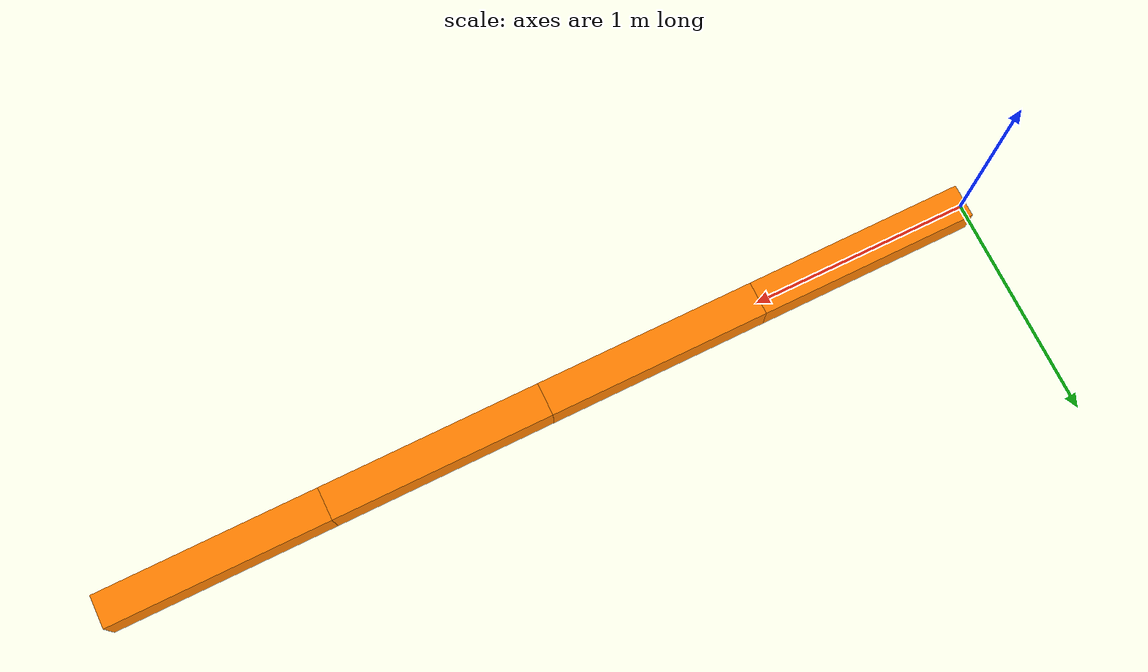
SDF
<?xml version="1.0" ?>
<sdf version='1.6'>
  <model name='4DOFManipulator'>
    <link name="link1">
      <pose frame=''>0 0 0 0 0 0</pose>
      <inertial>
        <pose frame='link1'>0.5 0 0 0 0 0</pose>
        <mass>1.0</mass>
        <inertia>
          <ixx>0.005</ixx>
          <ixy>0.</ixy>
          <ixz>0.0</ixz>
          <iyy>0.006</iyy>
          <izz>0.003</izz>
        </inertia>
      </inertial>
      <collision name='link1_collision'>
        <pose frame=''>0.5 0 0 0 0 0</pose>
        <geometry>
          <box>
            <size>1 0.15 0.15</size>
          </box>
        </geometry>
      </collision>
      <visual name='link1_visual'>
        <pose frame=''>0.5 0 0 0 0 0</pose>
        <geometry>
          <box>
            <size>1 0.15 0.15</size>
          </box>
        </geometry>
        <material>
          <ambient>1.0 0.5019607843137254902 0 1.0</ambient>
        </material>
      </visual>
      <self_collide>0</self_collide>
    </link>

    <link name="link2">
      <pose frame=''>1 0 0 0 0 0</pose>
      <inertial>
        <pose frame='link2'>0.5 0 0 0 0 0</pose>
        <mass>1.0</mass>
        <inertia>
          <ixx>0.005</ixx>
          <ixy>0.</ixy>
          <ixz>0.0</ixz>
          <iyy>0.006</iyy>
          <izz>0.003</izz>
        </inertia>
      </inertial>
      <collision name='link2_collision'>
        <pose frame=''>0.5 0 0 0 0 0</pose>
        <geometry>
          <box>
            <size>1 0.15 0.15</size>
          </box>
        </geometry>
      </collision>
      <visual name='link2_visual'>
        <pose frame=''>0.5 0 0 0 0 0</pose>
        <geometry>
          <box>
            <size>1 0.15 0.15</size>
          </box>
        </geometry>
        <material>
          <ambient>1.0 0.5019607843137254902 0 1.0</ambient>
        </material>
      </visual>
      <self_collide>0</self_collide>
    </link>

    <link name="link3">
      <pose frame=''>2 0 0 0 0 0</pose>
      <inertial>
        <pose frame='link3'>0.5 0 0 0 0 0</pose>
        <mass>1.0</mass>
        <inertia>
          <ixx>0.005</ixx>
          <ixy>0.</ixy>
          <ixz>0.0</ixz>
          <iyy>0.006</iyy>
          <izz>0.003</izz>
        </inertia>
      </inertial>
      <collision name='link3_collision'>
        <pose frame=''>0.5 0 0 0 0 0</pose>
        <geometry>
          <box>
            <size>1 0.15 0.15</size>
          </box>
        </geometry>
      </collision>
      <visual name='link3_visual'>
        <pose frame=''>0.5 0 0 0 0 0</pose>
        <geometry>
          <box>
            <size>1 0.15 0.15</size>
          </box>
        </geometry>
        <material>
          <ambient>1.0 0.5019607843137254902 0 1.0</ambient>
        </material>
      </visual>
      <self_collide>0</self_collide>
    </link>

    <link name="link4">
      <pose frame=''>3 0 0 0 0 0</pose>
      <inertial>
        <pose frame='link4'>0.5 0 0 0 0 0</pose>
        <mass>1.0</mass>
        <inertia>
          <ixx>0.005</ixx>
          <ixy>0.</ixy>
          <ixz>0.0</ixz>
          <iyy>0.006</iyy>
          <izz>0.003</izz>
        </inertia>
      </inertial>
      <collision name='link4_collision'>
        <pose frame=''>0.5 0 0 0 0 0</pose>
        <geometry>
          <box>
            <size>1 0.15 0.15</size>
          </box>
        </geometry>
      </collision>
      <visual name='link4_visual'>
        <pose frame=''>0.5 0 0 0 0 0</pose>
        <geometry>
          <box>
            <size>1 0.15 0.15</size>
          </box>
        </geometry>
        <material>
          <ambient>1.0 0.5019607843137254902 0 1.0</ambient>
        </material>
      </visual>
      <self_collide>0</self_collide>
    </link>

    <joint name="joint1" type="revolute">
      <parent>world</parent>
      <child>link1</child>
      <axis>
        <xyz>0 0 1</xyz>
        <limit>
          <lower>-0.64159265358979323846</lower>
          <upper>2.64159265358979323846</upper>
          <velocity>6</velocity>
          <effort>50</effort>
        </limit>
        <dynamics>
          <damping>1.0</damping>
          <friction>0.2</friction>
        </dynamics>
        <use_parent_model_frame>1</use_parent_model_frame>
      </axis>
      <physics>
        <ode>
          <implicit_spring_damper>1</implicit_spring_damper>
          <bounce>0</bounce>
          <limit>
            <erp>0.9</erp>
            <cfm>0</cfm>
          </limit>
        </ode>
      </physics>
    </joint>

    <joint name="joint2" type="revolute">
      <parent>link1</parent>
      <child>link2</child>
      <axis>
        <xyz>0 1 0</xyz>
        <limit>
          <lower>-1.74159265358979323846</lower>
          <upper>1.74159265358979323846</upper>
          <velocity>2</velocity>
          <effort>30</effort>
        </limit>
        <dynamics>
          <damping>1.0</damping>
          <friction>0.2</friction>
        </dynamics>
        <use_parent_model_frame>1</use_parent_model_frame>
      </axis>
      <physics>
        <ode>
          <implicit_spring_damper>1</implicit_spring_damper>
          <bounce>0</bounce>
          <limit>
            <erp>0.9</erp>
            <cfm>0</cfm>
          </limit>
        </ode>
      </physics>
    </joint>

    <joint name="joint3" type="revolute">
      <parent>link2</parent>
      <child>link3</child>
      <axis>
        <xyz>0 1 0</xyz>
        <limit>
          <lower>-2.54159265358979323846</lower>
          <upper>2.54159265358979323846</upper>
          <velocity>2</velocity>
          <effort>40</effort>
        </limit>
        <dynamics>
          <damping>1.0</damping>
          <friction>0.2</friction>
        </dynamics>
        <use_parent_model_frame>1</use_parent_model_frame>
      </axis>
      <physics>
        <ode>
          <implicit_spring_damper>1</implicit_spring_damper>
          <bounce>0</bounce>
          <limit>
            <erp>0.9</erp>
            <cfm>0</cfm>
          </limit>
        </ode>
      </physics>
    </joint>

    <joint name="joint4" type="revolute">
      <parent>link3</parent>
      <child>link4</child>
      <axis>
        <xyz>0 0 1</xyz>
        <limit>
          <lower>-1.94159265358979323846</lower>
          <upper>1.94159265358979323846</upper>
          <velocity>2</velocity>
          <effort>5</effort>
        </limit>
        <dynamics>
          <damping>1.0</damping>
          <friction>0.2</friction>
        </dynamics>
        <use_parent_model_frame>1</use_parent_model_frame>
      </axis>
      <physics>
        <ode>
          <implicit_spring_damper>1</implicit_spring_damper>
          <bounce>0</bounce>
          <limit>
            <erp>0.9</erp>
            <cfm>0</cfm>
          </limit>
        </ode>
      </physics>
    </joint>
  </model>

</sdf>
